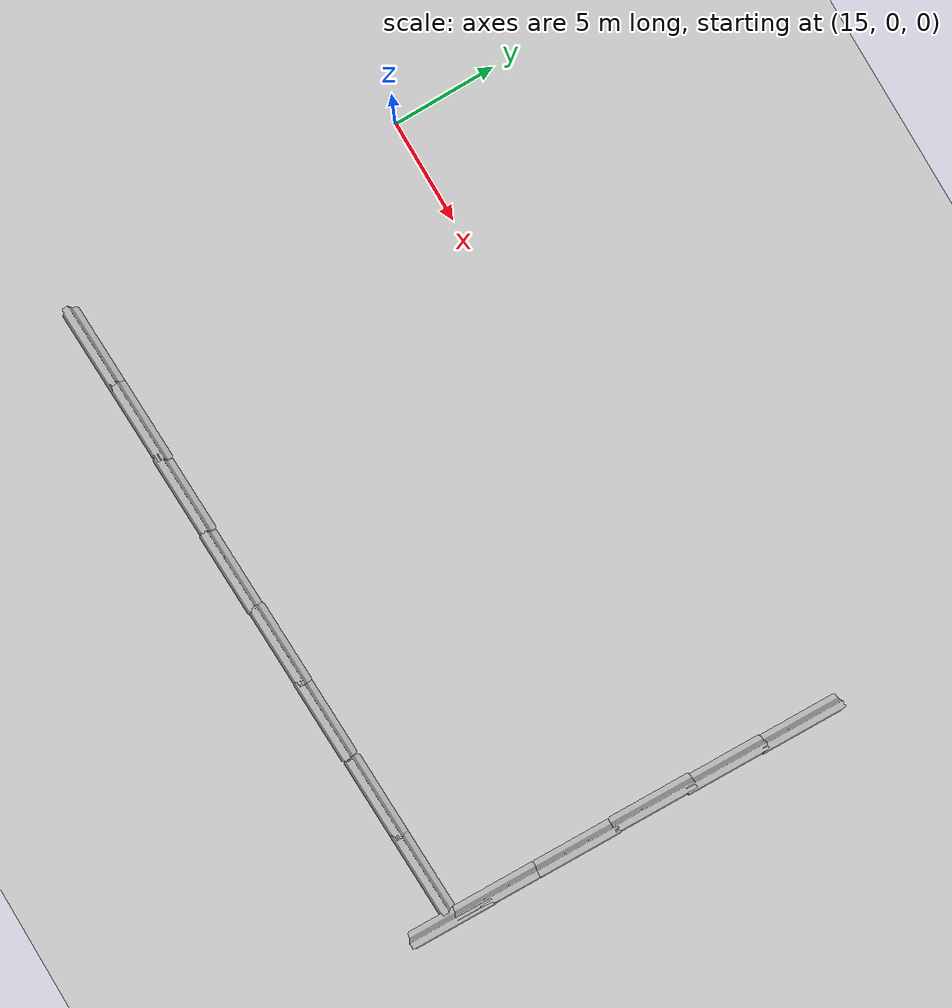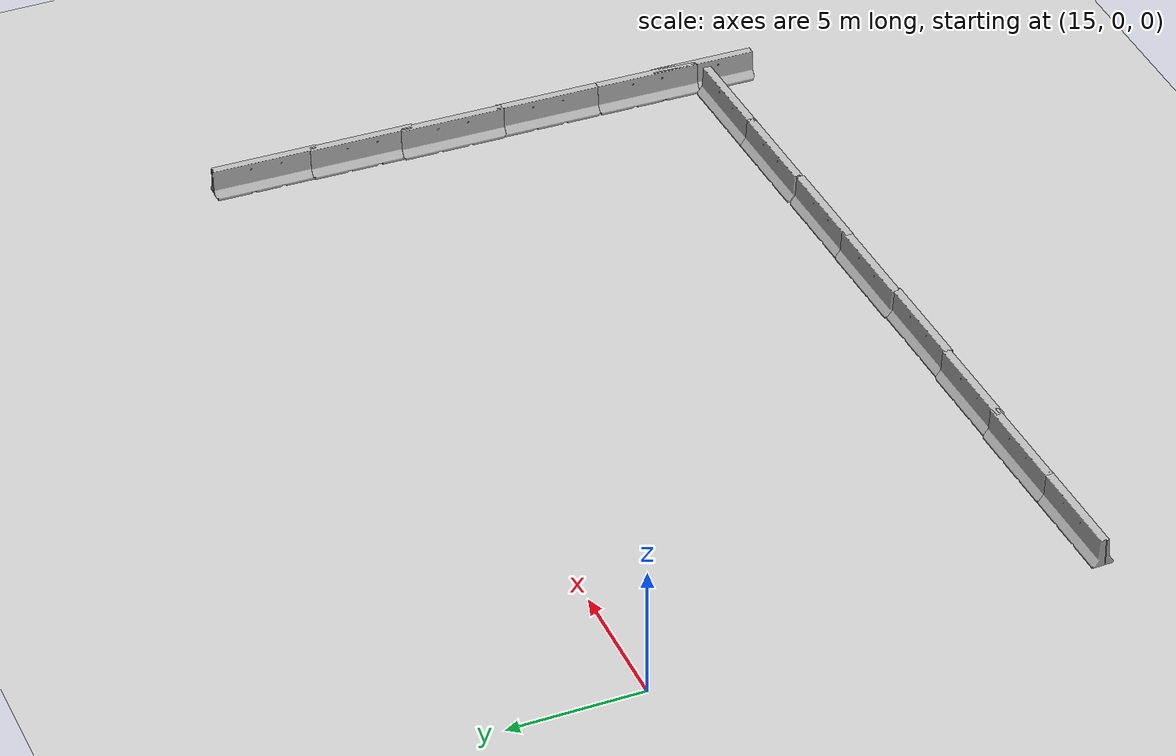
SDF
<sdf version="1.6">
 <world name="default">
  <model name="ground_plane">
   <static>1</static>
   <link name="link">
    <collision name="collision">
     <geometry><plane><normal>0 0 1</normal><size>100 100</size></plane></geometry>
     <surface><friction><ode><mu>100</mu><mu2>50</mu2></ode></friction></surface>
    </collision>
    <visual name="visual">
     <cast_shadows>0</cast_shadows>
     <geometry><plane><normal>0 0 1</normal><size>100 100</size></plane></geometry>
     <material>
      <script><uri>file://media/materials/scripts/gazebo.material</uri><name>Gazebo/Grey</name></script>
     </material>
    </visual>
   </link>
  </model>
  <model name="jersey_barrier_clone_clone_2">
   <static>1</static>
   <link name="link">
    <visual name="visual">
     <geometry>
      <mesh><uri>model://jersey_barrier/meshes/jersey_barrier.dae</uri><scale>1 1 1</scale></mesh>
     </geometry>
    </visual>
    <collision name="upright">
     <pose>0 0 0.5715 0 -0 0</pose>
     <geometry><box><size>4.06542 0.3063 1.143</size></box></geometry>
    </collision>
    <collision name="base">
     <pose>0 0 0.032258 0 -0 0</pose>
     <geometry><box><size>4.06542 0.8107 0.064516</size></box></geometry>
    </collision>
    <collision name="base2">
     <pose>0 0 0.1 0 -0 0</pose>
     <geometry><box><size>4.06542 0.65 0.1</size></box></geometry>
    </collision>
    <collision name="base3">
     <pose>0 0 0.2 0 -0 0</pose>
     <geometry><box><size>4.06542 0.5 0.1</size></box></geometry>
    </collision>
    <collision name="left-angle">
     <pose>0 -0.224 0.2401 0.9 -0 0</pose>
     <geometry><box><size>4.06542 0.5 0.064516</size></box></geometry>
    </collision>
    <collision name="right-angle">
     <pose>0 0.224 0.2401 -0.9 0 0</pose>
     <geometry><box><size>4.06542 0.5 0.064516</size></box></geometry>
    </collision>
   </link>
   <pose>16.8898 -16.5319 0 0 -0 0.033275</pose>
  </model>
  <model name="jersey_barrier_clone_clone_3">
   <static>1</static>
   <link name="link">
    <visual name="visual">
     <geometry>
      <mesh><uri>model://jersey_barrier/meshes/jersey_barrier.dae</uri><scale>1 1 1</scale></mesh>
     </geometry>
    </visual>
    <collision name="upright">
     <pose>0 0 0.5715 0 -0 0</pose>
     <geometry><box><size>4.06542 0.3063 1.143</size></box></geometry>
    </collision>
    <collision name="base">
     <pose>0 0 0.032258 0 -0 0</pose>
     <geometry><box><size>4.06542 0.8107 0.064516</size></box></geometry>
    </collision>
    <collision name="base2">
     <pose>0 0 0.1 0 -0 0</pose>
     <geometry><box><size>4.06542 0.65 0.1</size></box></geometry>
    </collision>
    <collision name="base3">
     <pose>0 0 0.2 0 -0 0</pose>
     <geometry><box><size>4.06542 0.5 0.1</size></box></geometry>
    </collision>
    <collision name="left-angle">
     <pose>0 -0.224 0.2401 0.9 -0 0</pose>
     <geometry><box><size>4.06542 0.5 0.064516</size></box></geometry>
    </collision>
    <collision name="right-angle">
     <pose>0 0.224 0.2401 -0.9 0 0</pose>
     <geometry><box><size>4.06542 0.5 0.064516</size></box></geometry>
    </collision>
   </link>
   <pose>20.7541 -16.3983 0 0 -0 0.033275</pose>
  </model>
  <model name="jersey_barrier_clone_clone_clone">
   <static>1</static>
   <link name="link">
    <visual name="visual">
     <geometry>
      <mesh><uri>model://jersey_barrier/meshes/jersey_barrier.dae</uri><scale>1 1 1</scale></mesh>
     </geometry>
    </visual>
    <collision name="upright">
     <pose>0 0 0.5715 0 -0 0</pose>
     <geometry><box><size>4.06542 0.3063 1.143</size></box></geometry>
    </collision>
    <collision name="base">
     <pose>0 0 0.032258 0 -0 0</pose>
     <geometry><box><size>4.06542 0.8107 0.064516</size></box></geometry>
    </collision>
    <collision name="base2">
     <pose>0 0 0.1 0 -0 0</pose>
     <geometry><box><size>4.06542 0.65 0.1</size></box></geometry>
    </collision>
    <collision name="base3">
     <pose>0 0 0.2 0 -0 0</pose>
     <geometry><box><size>4.06542 0.5 0.1</size></box></geometry>
    </collision>
    <collision name="left-angle">
     <pose>0 -0.224 0.2401 0.9 -0 0</pose>
     <geometry><box><size>4.06542 0.5 0.064516</size></box></geometry>
    </collision>
    <collision name="right-angle">
     <pose>0 0.224 0.2401 -0.9 0 0</pose>
     <geometry><box><size>4.06542 0.5 0.064516</size></box></geometry>
    </collision>
   </link>
   <pose>24.4141 -16.3295 0 0 -0 0.033275</pose>
  </model>
  <model name="jersey_barrier_clone_clone_clone_clone">
   <static>1</static>
   <link name="link">
    <visual name="visual">
     <geometry>
      <mesh><uri>model://jersey_barrier/meshes/jersey_barrier.dae</uri><scale>1 1 1</scale></mesh>
     </geometry>
    </visual>
    <collision name="upright">
     <pose>0 0 0.5715 0 -0 0</pose>
     <geometry><box><size>4.06542 0.3063 1.143</size></box></geometry>
    </collision>
    <collision name="base">
     <pose>0 0 0.032258 0 -0 0</pose>
     <geometry><box><size>4.06542 0.8107 0.064516</size></box></geometry>
    </collision>
    <collision name="base2">
     <pose>0 0 0.1 0 -0 0</pose>
     <geometry><box><size>4.06542 0.65 0.1</size></box></geometry>
    </collision>
    <collision name="base3">
     <pose>0 0 0.2 0 -0 0</pose>
     <geometry><box><size>4.06542 0.5 0.1</size></box></geometry>
    </collision>
    <collision name="left-angle">
     <pose>0 -0.224 0.2401 0.9 -0 0</pose>
     <geometry><box><size>4.06542 0.5 0.064516</size></box></geometry>
    </collision>
    <collision name="right-angle">
     <pose>0 0.224 0.2401 -0.9 0 0</pose>
     <geometry><box><size>4.06542 0.5 0.064516</size></box></geometry>
    </collision>
   </link>
   <pose>28.3606 -16.2557 0 0 -0 0.033275</pose>
  </model>
  <model name="jersey_barrier_clone_clone_clone_clone_clone">
   <static>1</static>
   <link name="link">
    <visual name="visual">
     <geometry>
      <mesh><uri>model://jersey_barrier/meshes/jersey_barrier.dae</uri><scale>1 1 1</scale></mesh>
     </geometry>
    </visual>
    <collision name="upright">
     <pose>0 0 0.5715 0 -0 0</pose>
     <geometry><box><size>4.06542 0.3063 1.143</size></box></geometry>
    </collision>
    <collision name="base">
     <pose>0 0 0.032258 0 -0 0</pose>
     <geometry><box><size>4.06542 0.8107 0.064516</size></box></geometry>
    </collision>
    <collision name="base2">
     <pose>0 0 0.1 0 -0 0</pose>
     <geometry><box><size>4.06542 0.65 0.1</size></box></geometry>
    </collision>
    <collision name="base3">
     <pose>0 0 0.2 0 -0 0</pose>
     <geometry><box><size>4.06542 0.5 0.1</size></box></geometry>
    </collision>
    <collision name="left-angle">
     <pose>0 -0.224 0.2401 0.9 -0 0</pose>
     <geometry><box><size>4.06542 0.5 0.064516</size></box></geometry>
    </collision>
    <collision name="right-angle">
     <pose>0 0.224 0.2401 -0.9 0 0</pose>
     <geometry><box><size>4.06542 0.5 0.064516</size></box></geometry>
    </collision>
   </link>
   <pose>32.2816 -16.0717 0 0 -0 0.033275</pose>
  </model>
  <model name="jersey_barrier_clone_clone_clone_clone_clone_0">
   <static>1</static>
   <link name="link">
    <visual name="visual">
     <geometry>
      <mesh><uri>model://jersey_barrier/meshes/jersey_barrier.dae</uri><scale>1 1 1</scale></mesh>
     </geometry>
    </visual>
    <collision name="upright">
     <pose>0 0 0.5715 0 -0 0</pose>
     <geometry><box><size>4.06542 0.3063 1.143</size></box></geometry>
    </collision>
    <collision name="base">
     <pose>0 0 0.032258 0 -0 0</pose>
     <geometry><box><size>4.06542 0.8107 0.064516</size></box></geometry>
    </collision>
    <collision name="base2">
     <pose>0 0 0.1 0 -0 0</pose>
     <geometry><box><size>4.06542 0.65 0.1</size></box></geometry>
    </collision>
    <collision name="base3">
     <pose>0 0 0.2 0 -0 0</pose>
     <geometry><box><size>4.06542 0.5 0.1</size></box></geometry>
    </collision>
    <collision name="left-angle">
     <pose>0 -0.224 0.2401 0.9 -0 0</pose>
     <geometry><box><size>4.06542 0.5 0.064516</size></box></geometry>
    </collision>
    <collision name="right-angle">
     <pose>0 0.224 0.2401 -0.9 0 0</pose>
     <geometry><box><size>4.06542 0.5 0.064516</size></box></geometry>
    </collision>
   </link>
   <pose>36.0206 -15.9684 0 0 -0 0.033275</pose>
  </model>
  <model name="jersey_barrier_clone_clone_clone_clone_clone_1">
   <static>1</static>
   <link name="link">
    <visual name="visual">
     <geometry>
      <mesh><uri>model://jersey_barrier/meshes/jersey_barrier.dae</uri><scale>1 1 1</scale></mesh>
     </geometry>
    </visual>
    <collision name="upright">
     <pose>0 0 0.5715 0 -0 0</pose>
     <geometry><box><size>4.06542 0.3063 1.143</size></box></geometry>
    </collision>
    <collision name="base">
     <pose>0 0 0.032258 0 -0 0</pose>
     <geometry><box><size>4.06542 0.8107 0.064516</size></box></geometry>
    </collision>
    <collision name="base2">
     <pose>0 0 0.1 0 -0 0</pose>
     <geometry><box><size>4.06542 0.65 0.1</size></box></geometry>
    </collision>
    <collision name="base3">
     <pose>0 0 0.2 0 -0 0</pose>
     <geometry><box><size>4.06542 0.5 0.1</size></box></geometry>
    </collision>
    <collision name="left-angle">
     <pose>0 -0.224 0.2401 0.9 -0 0</pose>
     <geometry><box><size>4.06542 0.5 0.064516</size></box></geometry>
    </collision>
    <collision name="right-angle">
     <pose>0 0.224 0.2401 -0.9 0 0</pose>
     <geometry><box><size>4.06542 0.5 0.064516</size></box></geometry>
    </collision>
   </link>
   <pose>40.1212 -15.7991 0 0 -0 0.033275</pose>
  </model>
  <model name="jersey_barrier_clone_clone_clone_3_clone_clone_3_clone_3">
   <static>1</static>
   <link name="link">
    <visual name="visual">
     <geometry>
      <mesh><uri>model://jersey_barrier/meshes/jersey_barrier.dae</uri><scale>1 1 1</scale></mesh>
     </geometry>
    </visual>
    <collision name="upright">
     <pose>0 0 0.5715 0 -0 0</pose>
     <geometry><box><size>4.06542 0.3063 1.143</size></box></geometry>
    </collision>
    <collision name="base">
     <pose>0 0 0.032258 0 -0 0</pose>
     <geometry><box><size>4.06542 0.8107 0.064516</size></box></geometry>
    </collision>
    <collision name="base2">
     <pose>0 0 0.1 0 -0 0</pose>
     <geometry><box><size>4.06542 0.65 0.1</size></box></geometry>
    </collision>
    <collision name="base3">
     <pose>0 0 0.2 0 -0 0</pose>
     <geometry><box><size>4.06542 0.5 0.1</size></box></geometry>
    </collision>
    <collision name="left-angle">
     <pose>0 -0.224 0.2401 0.9 -0 0</pose>
     <geometry><box><size>4.06542 0.5 0.064516</size></box></geometry>
    </collision>
    <collision name="right-angle">
     <pose>0 0.224 0.2401 -0.9 0 0</pose>
     <geometry><box><size>4.06542 0.5 0.064516</size></box></geometry>
    </collision>
   </link>
   <pose>46.795 1.80017 0 0 0 -1.5926</pose>
  </model>
  <model name="jersey_barrier_clone_clone_clone_3_clone_clone_3_clone_4">
   <static>1</static>
   <link name="link">
    <visual name="visual">
     <geometry>
      <mesh><uri>model://jersey_barrier/meshes/jersey_barrier.dae</uri><scale>1 1 1</scale></mesh>
     </geometry>
    </visual>
    <collision name="upright">
     <pose>0 0 0.5715 0 -0 0</pose>
     <geometry><box><size>4.06542 0.3063 1.143</size></box></geometry>
    </collision>
    <collision name="base">
     <pose>0 0 0.032258 0 -0 0</pose>
     <geometry><box><size>4.06542 0.8107 0.064516</size></box></geometry>
    </collision>
    <collision name="base2">
     <pose>0 0 0.1 0 -0 0</pose>
     <geometry><box><size>4.06542 0.65 0.1</size></box></geometry>
    </collision>
    <collision name="base3">
     <pose>0 0 0.2 0 -0 0</pose>
     <geometry><box><size>4.06542 0.5 0.1</size></box></geometry>
    </collision>
    <collision name="left-angle">
     <pose>0 -0.224 0.2401 0.9 -0 0</pose>
     <geometry><box><size>4.06542 0.5 0.064516</size></box></geometry>
    </collision>
    <collision name="right-angle">
     <pose>0 0.224 0.2401 -0.9 0 0</pose>
     <geometry><box><size>4.06542 0.5 0.064516</size></box></geometry>
    </collision>
   </link>
   <pose>46.6747 -1.94636 0 0 0 -1.5926</pose>
  </model>
  <model name="jersey_barrier_clone_clone_clone_3_clone_clone_3_clone_5">
   <static>1</static>
   <link name="link">
    <visual name="visual">
     <geometry>
      <mesh><uri>model://jersey_barrier/meshes/jersey_barrier.dae</uri><scale>1 1 1</scale></mesh>
     </geometry>
    </visual>
    <collision name="upright">
     <pose>0 0 0.5715 0 -0 0</pose>
     <geometry><box><size>4.06542 0.3063 1.143</size></box></geometry>
    </collision>
    <collision name="base">
     <pose>0 0 0.032258 0 -0 0</pose>
     <geometry><box><size>4.06542 0.8107 0.064516</size></box></geometry>
    </collision>
    <collision name="base2">
     <pose>0 0 0.1 0 -0 0</pose>
     <geometry><box><size>4.06542 0.65 0.1</size></box></geometry>
    </collision>
    <collision name="base3">
     <pose>0 0 0.2 0 -0 0</pose>
     <geometry><box><size>4.06542 0.5 0.1</size></box></geometry>
    </collision>
    <collision name="left-angle">
     <pose>0 -0.224 0.2401 0.9 -0 0</pose>
     <geometry><box><size>4.06542 0.5 0.064516</size></box></geometry>
    </collision>
    <collision name="right-angle">
     <pose>0 0.224 0.2401 -0.9 0 0</pose>
     <geometry><box><size>4.06542 0.5 0.064516</size></box></geometry>
    </collision>
   </link>
   <pose>46.5295 -5.48847 0 0 0 -1.5926</pose>
  </model>
  <model name="jersey_barrier_clone_clone_clone_3_clone_clone_3_clone_6">
   <static>1</static>
   <link name="link">
    <visual name="visual">
     <geometry>
      <mesh><uri>model://jersey_barrier/meshes/jersey_barrier.dae</uri><scale>1 1 1</scale></mesh>
     </geometry>
    </visual>
    <collision name="upright">
     <pose>0 0 0.5715 0 -0 0</pose>
     <geometry><box><size>4.06542 0.3063 1.143</size></box></geometry>
    </collision>
    <collision name="base">
     <pose>0 0 0.032258 0 -0 0</pose>
     <geometry><box><size>4.06542 0.8107 0.064516</size></box></geometry>
    </collision>
    <collision name="base2">
     <pose>0 0 0.1 0 -0 0</pose>
     <geometry><box><size>4.06542 0.65 0.1</size></box></geometry>
    </collision>
    <collision name="base3">
     <pose>0 0 0.2 0 -0 0</pose>
     <geometry><box><size>4.06542 0.5 0.1</size></box></geometry>
    </collision>
    <collision name="left-angle">
     <pose>0 -0.224 0.2401 0.9 -0 0</pose>
     <geometry><box><size>4.06542 0.5 0.064516</size></box></geometry>
    </collision>
    <collision name="right-angle">
     <pose>0 0.224 0.2401 -0.9 0 0</pose>
     <geometry><box><size>4.06542 0.5 0.064516</size></box></geometry>
    </collision>
   </link>
   <pose>46.4843 -9.29528 0 0 0 -1.5926</pose>
  </model>
  <model name="jersey_barrier_clone_clone_clone_3_clone_clone_3_clone_7">
   <static>1</static>
   <link name="link">
    <visual name="visual">
     <geometry>
      <mesh><uri>model://jersey_barrier/meshes/jersey_barrier.dae</uri><scale>1 1 1</scale></mesh>
     </geometry>
    </visual>
    <collision name="upright">
     <pose>0 0 0.5715 0 -0 0</pose>
     <geometry><box><size>4.06542 0.3063 1.143</size></box></geometry>
    </collision>
    <collision name="base">
     <pose>0 0 0.032258 0 -0 0</pose>
     <geometry><box><size>4.06542 0.8107 0.064516</size></box></geometry>
    </collision>
    <collision name="base2">
     <pose>0 0 0.1 0 -0 0</pose>
     <geometry><box><size>4.06542 0.65 0.1</size></box></geometry>
    </collision>
    <collision name="base3">
     <pose>0 0 0.2 0 -0 0</pose>
     <geometry><box><size>4.06542 0.5 0.1</size></box></geometry>
    </collision>
    <collision name="left-angle">
     <pose>0 -0.224 0.2401 0.9 -0 0</pose>
     <geometry><box><size>4.06542 0.5 0.064516</size></box></geometry>
    </collision>
    <collision name="right-angle">
     <pose>0 0.224 0.2401 -0.9 0 0</pose>
     <geometry><box><size>4.06542 0.5 0.064516</size></box></geometry>
    </collision>
   </link>
   <pose>46.393 -13.315 0 0 0 -1.5926</pose>
  </model>
  <model name="jersey_barrier_clone_clone_clone_3_clone_clone_3_clone_8">
   <static>1</static>
   <link name="link">
    <visual name="visual">
     <geometry>
      <mesh><uri>model://jersey_barrier/meshes/jersey_barrier.dae</uri><scale>1 1 1</scale></mesh>
     </geometry>
    </visual>
    <collision name="upright">
     <pose>0 0 0.5715 0 -0 0</pose>
     <geometry><box><size>4.06542 0.3063 1.143</size></box></geometry>
    </collision>
    <collision name="base">
     <pose>0 0 0.032258 0 -0 0</pose>
     <geometry><box><size>4.06542 0.8107 0.064516</size></box></geometry>
    </collision>
    <collision name="base2">
     <pose>0 0 0.1 0 -0 0</pose>
     <geometry><box><size>4.06542 0.65 0.1</size></box></geometry>
    </collision>
    <collision name="base3">
     <pose>0 0 0.2 0 -0 0</pose>
     <geometry><box><size>4.06542 0.5 0.1</size></box></geometry>
    </collision>
    <collision name="left-angle">
     <pose>0 -0.224 0.2401 0.9 -0 0</pose>
     <geometry><box><size>4.06542 0.5 0.064516</size></box></geometry>
    </collision>
    <collision name="right-angle">
     <pose>0 0.224 0.2401 -0.9 0 0</pose>
     <geometry><box><size>4.06542 0.5 0.064516</size></box></geometry>
    </collision>
   </link>
   <pose>46.3799 -15.5977 0 0 0 -1.5926</pose>
  </model>
  <model name="jersey_barrier_clone_clone_clone_clone_clone_1_clone">
   <static>1</static>
   <link name="link">
    <visual name="visual">
     <geometry>
      <mesh><uri>model://jersey_barrier/meshes/jersey_barrier.dae</uri><scale>1 1 1</scale></mesh>
     </geometry>
    </visual>
    <collision name="upright">
     <pose>0 0 0.5715 0 -0 0</pose>
     <geometry><box><size>4.06542 0.3063 1.143</size></box></geometry>
    </collision>
    <collision name="base">
     <pose>0 0 0.032258 0 -0 0</pose>
     <geometry><box><size>4.06542 0.8107 0.064516</size></box></geometry>
    </collision>
    <collision name="base2">
     <pose>0 0 0.1 0 -0 0</pose>
     <geometry><box><size>4.06542 0.65 0.1</size></box></geometry>
    </collision>
    <collision name="base3">
     <pose>0 0 0.2 0 -0 0</pose>
     <geometry><box><size>4.06542 0.5 0.1</size></box></geometry>
    </collision>
    <collision name="left-angle">
     <pose>0 -0.224 0.2401 0.9 -0 0</pose>
     <geometry><box><size>4.06542 0.5 0.064516</size></box></geometry>
    </collision>
    <collision name="right-angle">
     <pose>0 0.224 0.2401 -0.9 0 0</pose>
     <geometry><box><size>4.06542 0.5 0.064516</size></box></geometry>
    </collision>
   </link>
   <pose>43.9002 -15.6765 0 0 -0 0.033275</pose>
  </model>
 </world>
</sdf>
